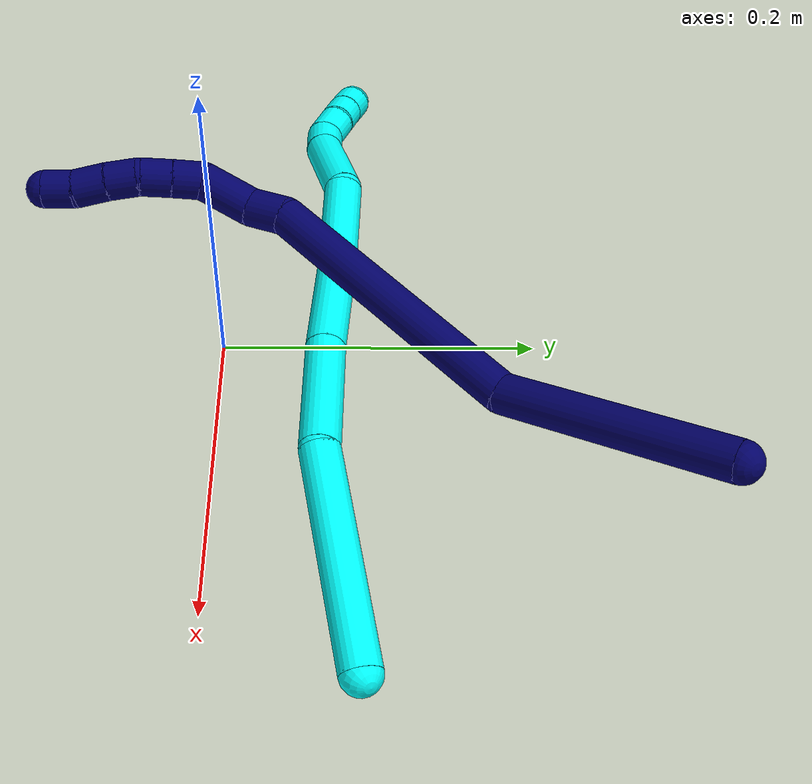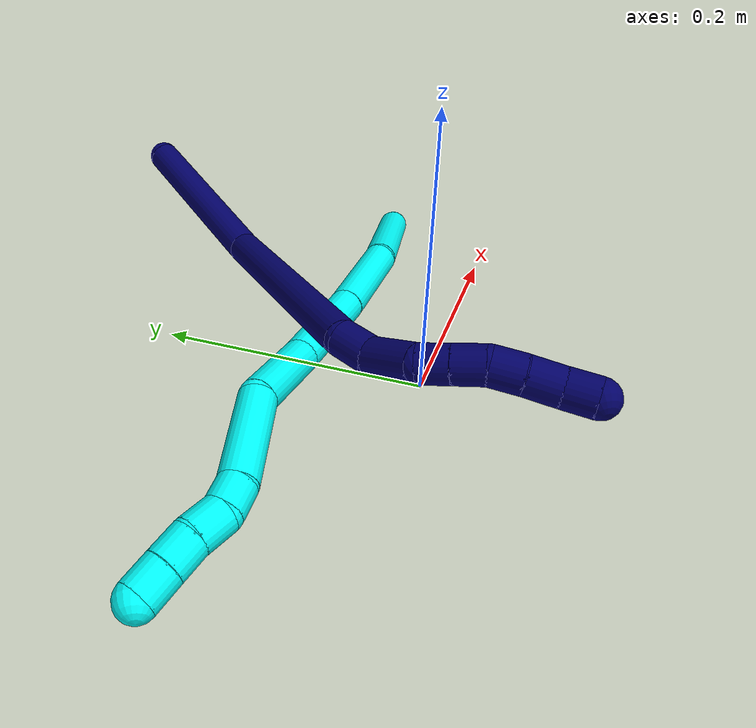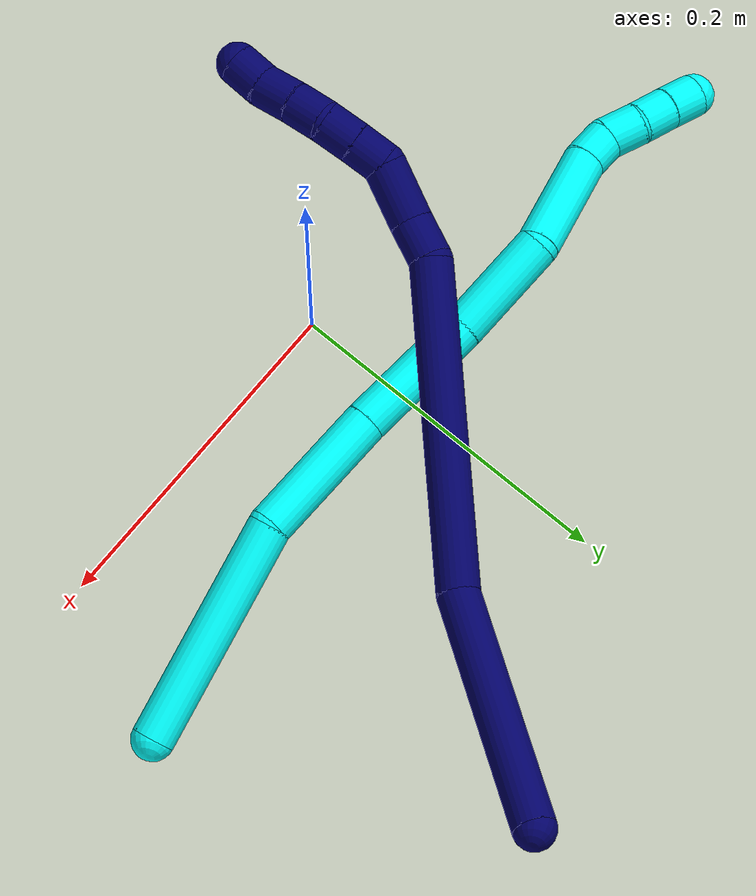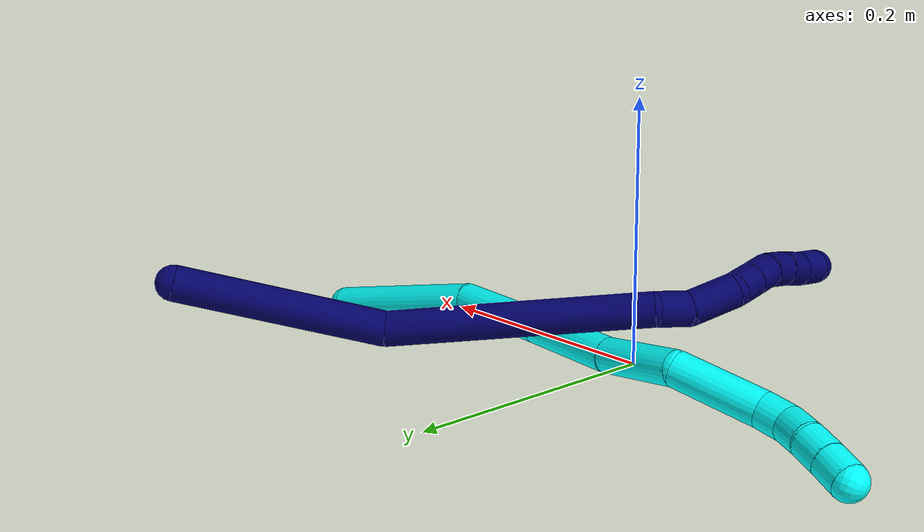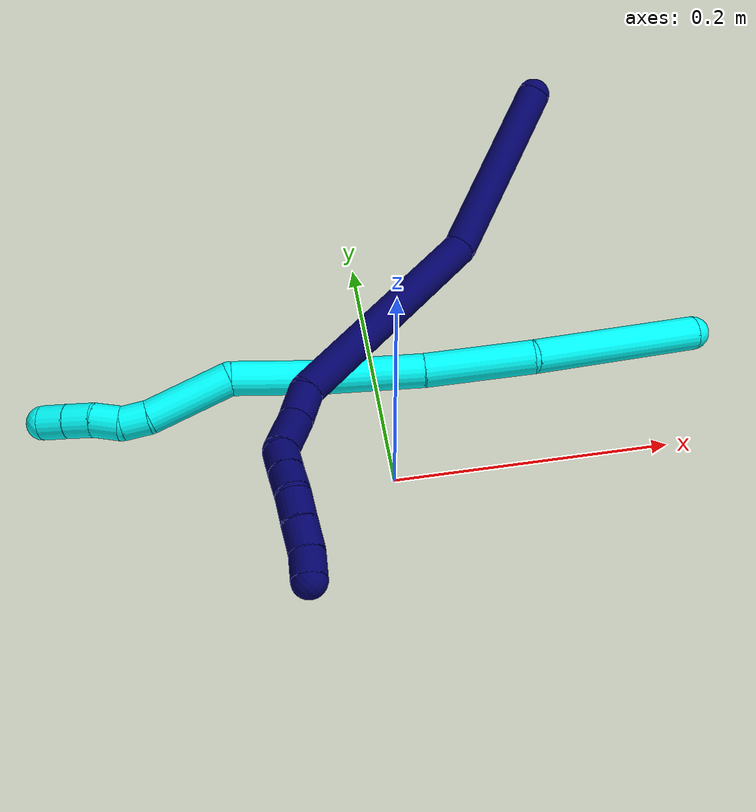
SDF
<sdf version="1.7">
 <world name="default">
  <model name="3">
   <static>0</static>
   <link name="3">
    <collision name="collision-cylinder-e_1_1_4">
     <pose>-0.025102 0.026182 0.056056 -0.436952 -0.38543 0.086594</pose>
     <geometry><cylinder><radius>0.0125</radius><length>0.133534</length></cylinder></geometry>
     <surface>
      <friction><ode><mu>1.16</mu><mu2>1.16</mu2><slip1>0</slip1><slip2>0</slip2></ode></friction>
      <contact><ode><kp>1e+06</kp><kd>1</kd><max_vel>0</max_vel><min_depth>0.001</min_depth></ode></contact>
     </surface>
    </collision>
    <visual name="visual-cylinder-e_1_1_4">
     <pose>-0.025102 0.026182 0.056056 -0.436952 -0.38543 0.086594</pose>
     <geometry><cylinder><radius>0.0125</radius><length>0.133534</length></cylinder></geometry>
     <material><ambient>0.003922 1 0.996078 1</ambient></material>
    </visual>
    <collision name="collision-cylinder-e_2_4_5">
     <pose>-0.070972 0.057264 0.146161 -0.142941 -0.543179 0.039867</pose>
     <geometry><cylinder><radius>0.0125</radius><length>0.080367</length></cylinder></geometry>
     <surface>
      <friction><ode><mu>1.16</mu><mu2>1.16</mu2><slip1>0</slip1><slip2>0</slip2></ode></friction>
      <contact><ode><kp>1e+06</kp><kd>1</kd><max_vel>0</max_vel><min_depth>0.001</min_depth></ode></contact>
     </surface>
    </collision>
    <visual name="visual-cylinder-e_2_4_5">
     <pose>-0.070972 0.057264 0.146161 -0.142941 -0.543179 0.039867</pose>
     <geometry><cylinder><radius>0.0125</radius><length>0.080367</length></cylinder></geometry>
     <material><ambient>0.003922 1 0.996078 1</ambient></material>
    </visual>
    <collision name="collision-cylinder-e_3_5_6">
     <pose>-0.113722 0.066844 0.211591 -0.148034 -0.605857 0.046344</pose>
     <geometry><cylinder><radius>0.0125</radius><length>0.077197</length></cylinder></geometry>
     <surface>
      <friction><ode><mu>1.16</mu><mu2>1.16</mu2><slip1>0</slip1><slip2>0</slip2></ode></friction>
      <contact><ode><kp>1e+06</kp><kd>1</kd><max_vel>0</max_vel><min_depth>0.001</min_depth></ode></contact>
     </surface>
    </collision>
    <visual name="visual-cylinder-e_3_5_6">
     <pose>-0.113722 0.066844 0.211591 -0.148034 -0.605857 0.046344</pose>
     <geometry><cylinder><radius>0.0125</radius><length>0.077197</length></cylinder></geometry>
     <material><ambient>0.003922 1 0.996078 1</ambient></material>
    </visual>
    <collision name="collision-cylinder-e_4_6_7">
     <pose>-0.153554 0.079551 0.267928 -0.311218 -0.597825 0.096607</pose>
     <geometry><cylinder><radius>0.0125</radius><length>0.063431</length></cylinder></geometry>
     <surface>
      <friction><ode><mu>1.16</mu><mu2>1.16</mu2><slip1>0</slip1><slip2>0</slip2></ode></friction>
      <contact><ode><kp>1e+06</kp><kd>1</kd><max_vel>0</max_vel><min_depth>0.001</min_depth></ode></contact>
     </surface>
    </collision>
    <visual name="visual-cylinder-e_4_6_7">
     <pose>-0.153554 0.079551 0.267928 -0.311218 -0.597825 0.096607</pose>
     <geometry><cylinder><radius>0.0125</radius><length>0.063431</length></cylinder></geometry>
     <material><ambient>0.003922 1 0.996078 1</ambient></material>
    </visual>
    <collision name="collision-cylinder-e_5_7_8">
     <pose>-0.179062 0.087745 0.323614 -0.005409 -0.244207 0.000664</pose>
     <geometry><cylinder><radius>0.0125</radius><length>0.06334</length></cylinder></geometry>
     <surface>
      <friction><ode><mu>1.16</mu><mu2>1.16</mu2><slip1>0</slip1><slip2>0</slip2></ode></friction>
      <contact><ode><kp>1e+06</kp><kd>1</kd><max_vel>0</max_vel><min_depth>0.001</min_depth></ode></contact>
     </surface>
    </collision>
    <visual name="visual-cylinder-e_5_7_8">
     <pose>-0.179062 0.087745 0.323614 -0.005409 -0.244207 0.000664</pose>
     <geometry><cylinder><radius>0.0125</radius><length>0.06334</length></cylinder></geometry>
     <material><ambient>0.003922 1 0.996078 1</ambient></material>
    </visual>
    <collision name="collision-cylinder-e_6_8_9">
     <pose>-0.191279 0.087695 0.363242 0.024271 -0.473381 -0.005855</pose>
     <geometry><cylinder><radius>0.0125</radius><length>0.020002</length></cylinder></geometry>
     <surface>
      <friction><ode><mu>1.16</mu><mu2>1.16</mu2><slip1>0</slip1><slip2>0</slip2></ode></friction>
      <contact><ode><kp>1e+06</kp><kd>1</kd><max_vel>0</max_vel><min_depth>0.001</min_depth></ode></contact>
     </surface>
    </collision>
    <visual name="visual-cylinder-e_6_8_9">
     <pose>-0.191279 0.087695 0.363242 0.024271 -0.473381 -0.005855</pose>
     <geometry><cylinder><radius>0.0125</radius><length>0.020002</length></cylinder></geometry>
     <material><ambient>0.003922 1 0.996078 1</ambient></material>
    </visual>
    <collision name="collision-cylinder-e_7_9_10">
     <pose>-0.204028 0.08678 0.379196 0.09876 -0.857241 -0.045158</pose>
     <geometry><cylinder><radius>0.0125</radius><length>0.021665</length></cylinder></geometry>
     <surface>
      <friction><ode><mu>1.16</mu><mu2>1.16</mu2><slip1>0</slip1><slip2>0</slip2></ode></friction>
      <contact><ode><kp>1e+06</kp><kd>1</kd><max_vel>0</max_vel><min_depth>0.001</min_depth></ode></contact>
     </surface>
    </collision>
    <visual name="visual-cylinder-e_7_9_10">
     <pose>-0.204028 0.08678 0.379196 0.09876 -0.857241 -0.045158</pose>
     <geometry><cylinder><radius>0.0125</radius><length>0.021665</length></cylinder></geometry>
     <material><ambient>0.003922 1 0.996078 1</ambient></material>
    </visual>
    <collision name="collision-cylinder-e_8_10_11">
     <pose>-0.218861 0.08429 0.393816 0.232399 -0.70715 -0.08611</pose>
     <geometry><cylinder><radius>0.0125</radius><length>0.020449</length></cylinder></geometry>
     <surface>
      <friction><ode><mu>1.16</mu><mu2>1.16</mu2><slip1>0</slip1><slip2>0</slip2></ode></friction>
      <contact><ode><kp>1e+06</kp><kd>1</kd><max_vel>0</max_vel><min_depth>0.001</min_depth></ode></contact>
     </surface>
    </collision>
    <visual name="visual-cylinder-e_8_10_11">
     <pose>-0.218861 0.08429 0.393816 0.232399 -0.70715 -0.08611</pose>
     <geometry><cylinder><radius>0.0125</radius><length>0.020449</length></cylinder></geometry>
     <material><ambient>0.003922 1 0.996078 1</ambient></material>
    </visual>
    <collision name="collision-cylinder-e_9_11_2">
     <pose>-0.231938 0.080363 0.40874 0.282581 -0.698435 -0.103497</pose>
     <geometry><cylinder><radius>0.0125</radius><length>0.020015</length></cylinder></geometry>
     <surface>
      <friction><ode><mu>1.16</mu><mu2>1.16</mu2><slip1>0</slip1><slip2>0</slip2></ode></friction>
      <contact><ode><kp>1e+06</kp><kd>1</kd><max_vel>0</max_vel><min_depth>0.001</min_depth></ode></contact>
     </surface>
    </collision>
    <visual name="visual-cylinder-e_9_11_2">
     <pose>-0.231938 0.080363 0.40874 0.282581 -0.698435 -0.103497</pose>
     <geometry><cylinder><radius>0.0125</radius><length>0.020015</length></cylinder></geometry>
     <material><ambient>0.003922 1 0.996078 1</ambient></material>
    </visual>
    <collision name="collision-sphere-2">
     <pose>-0.238373 0.078226 0.4161 0 -0 0</pose>
     <geometry><sphere><radius>0.0125</radius></sphere></geometry>
     <surface>
      <friction><ode><mu>1.16</mu><mu2>1.16</mu2><slip1>0</slip1><slip2>0</slip2></ode></friction>
      <contact><ode><kp>1e+06</kp><kd>1</kd><max_vel>0</max_vel><min_depth>0.001</min_depth></ode></contact>
     </surface>
    </collision>
    <visual name="visual-sphere-2">
     <pose>-0.238373 0.078226 0.4161 0 -0 0</pose>
     <geometry><sphere><radius>0.0125</radius></sphere></geometry>
     <material><ambient>0.003922 1 0.996078 1</ambient></material>
    </visual>
    <collision name="collision-sphere-11">
     <pose>-0.225503 0.0825 0.40138 0 -0 0</pose>
     <geometry><sphere><radius>0.0125</radius></sphere></geometry>
     <surface>
      <friction><ode><mu>1.16</mu><mu2>1.16</mu2><slip1>0</slip1><slip2>0</slip2></ode></friction>
      <contact><ode><kp>1e+06</kp><kd>1</kd><max_vel>0</max_vel><min_depth>0.001</min_depth></ode></contact>
     </surface>
    </collision>
    <visual name="visual-sphere-11">
     <pose>-0.225503 0.0825 0.40138 0 -0 0</pose>
     <geometry><sphere><radius>0.0125</radius></sphere></geometry>
     <material><ambient>0.003922 1 0.996078 1</ambient></material>
    </visual>
    <collision name="collision-sphere-10">
     <pose>-0.212218 0.086081 0.386252 0 -0 0</pose>
     <geometry><sphere><radius>0.0125</radius></sphere></geometry>
     <surface>
      <friction><ode><mu>1.16</mu><mu2>1.16</mu2><slip1>0</slip1><slip2>0</slip2></ode></friction>
      <contact><ode><kp>1e+06</kp><kd>1</kd><max_vel>0</max_vel><min_depth>0.001</min_depth></ode></contact>
     </surface>
    </collision>
    <visual name="visual-sphere-10">
     <pose>-0.212218 0.086081 0.386252 0 -0 0</pose>
     <geometry><sphere><radius>0.0125</radius></sphere></geometry>
     <material><ambient>0.003922 1 0.996078 1</ambient></material>
    </visual>
    <collision name="collision-sphere-9">
     <pose>-0.195838 0.087479 0.37214 0 -0 0</pose>
     <geometry><sphere><radius>0.0125</radius></sphere></geometry>
     <surface>
      <friction><ode><mu>1.16</mu><mu2>1.16</mu2><slip1>0</slip1><slip2>0</slip2></ode></friction>
      <contact><ode><kp>1e+06</kp><kd>1</kd><max_vel>0</max_vel><min_depth>0.001</min_depth></ode></contact>
     </surface>
    </collision>
    <visual name="visual-sphere-9">
     <pose>-0.195838 0.087479 0.37214 0 -0 0</pose>
     <geometry><sphere><radius>0.0125</radius></sphere></geometry>
     <material><ambient>0.003922 1 0.996078 1</ambient></material>
    </visual>
    <collision name="collision-sphere-4">
     <pose>-0.050203 0.052363 0.112112 0 -0 0</pose>
     <geometry><sphere><radius>0.0125</radius></sphere></geometry>
     <surface>
      <friction><ode><mu>1.16</mu><mu2>1.16</mu2><slip1>0</slip1><slip2>0</slip2></ode></friction>
      <contact><ode><kp>1e+06</kp><kd>1</kd><max_vel>0</max_vel><min_depth>0.001</min_depth></ode></contact>
     </surface>
    </collision>
    <visual name="visual-sphere-4">
     <pose>-0.050203 0.052363 0.112112 0 -0 0</pose>
     <geometry><sphere><radius>0.0125</radius></sphere></geometry>
     <material><ambient>0.003922 1 0.996078 1</ambient></material>
    </visual>
    <collision name="collision-sphere-1">
     <geometry><sphere><radius>0.0125</radius></sphere></geometry>
     <surface>
      <friction><ode><mu>1.16</mu><mu2>1.16</mu2><slip1>0</slip1><slip2>0</slip2></ode></friction>
      <contact><ode><kp>1e+06</kp><kd>1</kd><max_vel>0</max_vel><min_depth>0.001</min_depth></ode></contact>
     </surface>
    </collision>
    <visual name="visual-sphere-1">
     <geometry><sphere><radius>0.0125</radius></sphere></geometry>
     <material><ambient>0.003922 1 0.996078 1</ambient></material>
    </visual>
    <collision name="collision-sphere-8">
     <pose>-0.186719 0.087911 0.354343 0 -0 0</pose>
     <geometry><sphere><radius>0.0125</radius></sphere></geometry>
     <surface>
      <friction><ode><mu>1.16</mu><mu2>1.16</mu2><slip1>0</slip1><slip2>0</slip2></ode></friction>
      <contact><ode><kp>1e+06</kp><kd>1</kd><max_vel>0</max_vel><min_depth>0.001</min_depth></ode></contact>
     </surface>
    </collision>
    <visual name="visual-sphere-8">
     <pose>-0.186719 0.087911 0.354343 0 -0 0</pose>
     <geometry><sphere><radius>0.0125</radius></sphere></geometry>
     <material><ambient>0.003922 1 0.996078 1</ambient></material>
    </visual>
    <collision name="collision-sphere-5">
     <pose>-0.091742 0.062164 0.18021 0 -0 0</pose>
     <geometry><sphere><radius>0.0125</radius></sphere></geometry>
     <surface>
      <friction><ode><mu>1.16</mu><mu2>1.16</mu2><slip1>0</slip1><slip2>0</slip2></ode></friction>
      <contact><ode><kp>1e+06</kp><kd>1</kd><max_vel>0</max_vel><min_depth>0.001</min_depth></ode></contact>
     </surface>
    </collision>
    <visual name="visual-sphere-5">
     <pose>-0.091742 0.062164 0.18021 0 -0 0</pose>
     <geometry><sphere><radius>0.0125</radius></sphere></geometry>
     <material><ambient>0.003922 1 0.996078 1</ambient></material>
    </visual>
    <collision name="collision-sphere-6">
     <pose>-0.135703 0.071524 0.242973 0 -0 0</pose>
     <geometry><sphere><radius>0.0125</radius></sphere></geometry>
     <surface>
      <friction><ode><mu>1.16</mu><mu2>1.16</mu2><slip1>0</slip1><slip2>0</slip2></ode></friction>
      <contact><ode><kp>1e+06</kp><kd>1</kd><max_vel>0</max_vel><min_depth>0.001</min_depth></ode></contact>
     </surface>
    </collision>
    <visual name="visual-sphere-6">
     <pose>-0.135703 0.071524 0.242973 0 -0 0</pose>
     <geometry><sphere><radius>0.0125</radius></sphere></geometry>
     <material><ambient>0.003922 1 0.996078 1</ambient></material>
    </visual>
    <collision name="collision-sphere-7">
     <pose>-0.171405 0.087578 0.292884 0 -0 0</pose>
     <geometry><sphere><radius>0.0125</radius></sphere></geometry>
     <surface>
      <friction><ode><mu>1.16</mu><mu2>1.16</mu2><slip1>0</slip1><slip2>0</slip2></ode></friction>
      <contact><ode><kp>1e+06</kp><kd>1</kd><max_vel>0</max_vel><min_depth>0.001</min_depth></ode></contact>
     </surface>
    </collision>
    <visual name="visual-sphere-7">
     <pose>-0.171405 0.087578 0.292884 0 -0 0</pose>
     <geometry><sphere><radius>0.0125</radius></sphere></geometry>
     <material><ambient>0.003922 1 0.996078 1</ambient></material>
    </visual>
    <inertial>
     <pose>-0.112561 0.061657 0.209547 0 -0 0</pose>
     <mass>0.5</mass>
     <inertia>
      <ixx>0.000311</ixx>
      <ixy>0</ixy>
      <ixz>0</ixz>
      <iyy>0.000353</iyy>
      <iyz>0</iyz>
      <izz>8.4e-05</izz>
     </inertia>
    </inertial>
   </link>
   <pose>0.241825 0.089442 0.012499 1.87765 0.206966 -1.02885</pose>
  </model>
  <model name="7">
   <static>0</static>
   <link name="7">
    <collision name="collision-cylinder-e_1_1_4">
     <pose>-0.001795 -0.031704 -0.066302 2.69555 -0.024415 -0.107555</pose>
     <geometry><cylinder><radius>0.0125</radius><length>0.147028</length></cylinder></geometry>
     <surface>
      <friction><ode><mu>1.16</mu><mu2>1.16</mu2><slip1>0</slip1><slip2>0</slip2></ode></friction>
      <contact><ode><kp>1e+06</kp><kd>1</kd><max_vel>0</max_vel><min_depth>0.001</min_depth></ode></contact>
     </surface>
    </collision>
    <visual name="visual-cylinder-e_1_1_4">
     <pose>-0.001795 -0.031704 -0.066302 2.69555 -0.024415 -0.107555</pose>
     <geometry><cylinder><radius>0.0125</radius><length>0.147028</length></cylinder></geometry>
     <material><ambient>0.003922 0 0.403922 1</ambient></material>
    </visual>
    <collision name="collision-cylinder-e_2_4_5">
     <pose>-0.043048 -0.096953 -0.211048 2.7375 -0.433196 -1.64235</pose>
     <geometry><cylinder><radius>0.0125</radius><length>0.187998</length></cylinder></geometry>
     <surface>
      <friction><ode><mu>1.16</mu><mu2>1.16</mu2><slip1>0</slip1><slip2>0</slip2></ode></friction>
      <contact><ode><kp>1e+06</kp><kd>1</kd><max_vel>0</max_vel><min_depth>0.001</min_depth></ode></contact>
     </surface>
    </collision>
    <visual name="visual-cylinder-e_2_4_5">
     <pose>-0.043048 -0.096953 -0.211048 2.7375 -0.433196 -1.64235</pose>
     <geometry><cylinder><radius>0.0125</radius><length>0.187998</length></cylinder></geometry>
     <material><ambient>0.003922 0 0.403922 1</ambient></material>
    </visual>
    <collision name="collision-cylinder-e_3_5_6">
     <pose>-0.084052 -0.138351 -0.29936 2.46946 -0.122008 -0.346207</pose>
     <geometry><cylinder><radius>0.0125</radius><length>0.02541</length></cylinder></geometry>
     <surface>
      <friction><ode><mu>1.16</mu><mu2>1.16</mu2><slip1>0</slip1><slip2>0</slip2></ode></friction>
      <contact><ode><kp>1e+06</kp><kd>1</kd><max_vel>0</max_vel><min_depth>0.001</min_depth></ode></contact>
     </surface>
    </collision>
    <visual name="visual-cylinder-e_3_5_6">
     <pose>-0.084052 -0.138351 -0.29936 2.46946 -0.122008 -0.346207</pose>
     <geometry><cylinder><radius>0.0125</radius><length>0.02541</length></cylinder></geometry>
     <material><ambient>0.003922 0 0.403922 1</ambient></material>
    </visual>
    <collision name="collision-cylinder-e_4_6_7">
     <pose>-0.093334 -0.158686 -0.319677 2.26771 -0.443586 -0.899628</pose>
     <geometry><cylinder><radius>0.0125</radius><length>0.036048</length></cylinder></geometry>
     <surface>
      <friction><ode><mu>1.16</mu><mu2>1.16</mu2><slip1>0</slip1><slip2>0</slip2></ode></friction>
      <contact><ode><kp>1e+06</kp><kd>1</kd><max_vel>0</max_vel><min_depth>0.001</min_depth></ode></contact>
     </surface>
    </collision>
    <visual name="visual-cylinder-e_4_6_7">
     <pose>-0.093334 -0.158686 -0.319677 2.26771 -0.443586 -0.899628</pose>
     <geometry><cylinder><radius>0.0125</radius><length>0.036048</length></cylinder></geometry>
     <material><ambient>0.003922 0 0.403922 1</ambient></material>
    </visual>
    <collision name="collision-cylinder-e_5_7_8">
     <pose>-0.101971 -0.1807 -0.333456 1.90699 -0.089095 -0.125431</pose>
     <geometry><cylinder><radius>0.0125</radius><length>0.020271</length></cylinder></geometry>
     <surface>
      <friction><ode><mu>1.16</mu><mu2>1.16</mu2><slip1>0</slip1><slip2>0</slip2></ode></friction>
      <contact><ode><kp>1e+06</kp><kd>1</kd><max_vel>0</max_vel><min_depth>0.001</min_depth></ode></contact>
     </surface>
    </collision>
    <visual name="visual-cylinder-e_5_7_8">
     <pose>-0.101971 -0.1807 -0.333456 1.90699 -0.089095 -0.125431</pose>
     <geometry><cylinder><radius>0.0125</radius><length>0.020271</length></cylinder></geometry>
     <material><ambient>0.003922 0 0.403922 1</ambient></material>
    </visual>
    <collision name="collision-cylinder-e_6_8_9">
     <pose>-0.103574 -0.200062 -0.340035 1.88987 -0.067545 -0.093418</pose>
     <geometry><cylinder><radius>0.0125</radius><length>0.020757</length></cylinder></geometry>
     <surface>
      <friction><ode><mu>1.16</mu><mu2>1.16</mu2><slip1>0</slip1><slip2>0</slip2></ode></friction>
      <contact><ode><kp>1e+06</kp><kd>1</kd><max_vel>0</max_vel><min_depth>0.001</min_depth></ode></contact>
     </surface>
    </collision>
    <visual name="visual-cylinder-e_6_8_9">
     <pose>-0.103574 -0.200062 -0.340035 1.88987 -0.067545 -0.093418</pose>
     <geometry><cylinder><radius>0.0125</radius><length>0.020757</length></cylinder></geometry>
     <material><ambient>0.003922 0 0.403922 1</ambient></material>
    </visual>
    <collision name="collision-cylinder-e_7_9_10">
     <pose>-0.102604 -0.21886 -0.347944 2.05021 0.163812 0.268762</pose>
     <geometry><cylinder><radius>0.0125</radius><length>0.020483</length></cylinder></geometry>
     <surface>
      <friction><ode><mu>1.16</mu><mu2>1.16</mu2><slip1>0</slip1><slip2>0</slip2></ode></friction>
      <contact><ode><kp>1e+06</kp><kd>1</kd><max_vel>0</max_vel><min_depth>0.001</min_depth></ode></contact>
     </surface>
    </collision>
    <visual name="visual-cylinder-e_7_9_10">
     <pose>-0.102604 -0.21886 -0.347944 2.05021 0.163812 0.268762</pose>
     <geometry><cylinder><radius>0.0125</radius><length>0.020483</length></cylinder></geometry>
     <material><ambient>0.003922 0 0.403922 1</ambient></material>
    </visual>
    <collision name="collision-cylinder-e_8_10_11">
     <pose>-0.098328 -0.237188 -0.357642 2.06435 0.240308 0.39873</pose>
     <geometry><cylinder><radius>0.0125</radius><length>0.021893</length></cylinder></geometry>
     <surface>
      <friction><ode><mu>1.16</mu><mu2>1.16</mu2><slip1>0</slip1><slip2>0</slip2></ode></friction>
      <contact><ode><kp>1e+06</kp><kd>1</kd><max_vel>0</max_vel><min_depth>0.001</min_depth></ode></contact>
     </surface>
    </collision>
    <visual name="visual-cylinder-e_8_10_11">
     <pose>-0.098328 -0.237188 -0.357642 2.06435 0.240308 0.39873</pose>
     <geometry><cylinder><radius>0.0125</radius><length>0.021893</length></cylinder></geometry>
     <material><ambient>0.003922 0 0.403922 1</ambient></material>
    </visual>
    <collision name="collision-cylinder-e_9_11_2">
     <pose>-0.095269 -0.255025 -0.368075 2.13783 0.045198 0.082333</pose>
     <geometry><cylinder><radius>0.0125</radius><length>0.020112</length></cylinder></geometry>
     <surface>
      <friction><ode><mu>1.16</mu><mu2>1.16</mu2><slip1>0</slip1><slip2>0</slip2></ode></friction>
      <contact><ode><kp>1e+06</kp><kd>1</kd><max_vel>0</max_vel><min_depth>0.001</min_depth></ode></contact>
     </surface>
    </collision>
    <visual name="visual-cylinder-e_9_11_2">
     <pose>-0.095269 -0.255025 -0.368075 2.13783 0.045198 0.082333</pose>
     <geometry><cylinder><radius>0.0125</radius><length>0.020112</length></cylinder></geometry>
     <material><ambient>0.003922 0 0.403922 1</ambient></material>
    </visual>
    <collision name="collision-sphere-2">
     <pose>-0.094814 -0.263499 -0.373471 0 -0 0</pose>
     <geometry><sphere><radius>0.0125</radius></sphere></geometry>
     <surface>
      <friction><ode><mu>1.16</mu><mu2>1.16</mu2><slip1>0</slip1><slip2>0</slip2></ode></friction>
      <contact><ode><kp>1e+06</kp><kd>1</kd><max_vel>0</max_vel><min_depth>0.001</min_depth></ode></contact>
     </surface>
    </collision>
    <visual name="visual-sphere-2">
     <pose>-0.094814 -0.263499 -0.373471 0 -0 0</pose>
     <geometry><sphere><radius>0.0125</radius></sphere></geometry>
     <material><ambient>0.003922 0 0.403922 1</ambient></material>
    </visual>
    <collision name="collision-sphere-11">
     <pose>-0.095723 -0.246552 -0.362679 0 -0 0</pose>
     <geometry><sphere><radius>0.0125</radius></sphere></geometry>
     <surface>
      <friction><ode><mu>1.16</mu><mu2>1.16</mu2><slip1>0</slip1><slip2>0</slip2></ode></friction>
      <contact><ode><kp>1e+06</kp><kd>1</kd><max_vel>0</max_vel><min_depth>0.001</min_depth></ode></contact>
     </surface>
    </collision>
    <visual name="visual-sphere-11">
     <pose>-0.095723 -0.246552 -0.362679 0 -0 0</pose>
     <geometry><sphere><radius>0.0125</radius></sphere></geometry>
     <material><ambient>0.003922 0 0.403922 1</ambient></material>
    </visual>
    <collision name="collision-sphere-10">
     <pose>-0.100934 -0.227825 -0.352605 0 -0 0</pose>
     <geometry><sphere><radius>0.0125</radius></sphere></geometry>
     <surface>
      <friction><ode><mu>1.16</mu><mu2>1.16</mu2><slip1>0</slip1><slip2>0</slip2></ode></friction>
      <contact><ode><kp>1e+06</kp><kd>1</kd><max_vel>0</max_vel><min_depth>0.001</min_depth></ode></contact>
     </surface>
    </collision>
    <visual name="visual-sphere-10">
     <pose>-0.100934 -0.227825 -0.352605 0 -0 0</pose>
     <geometry><sphere><radius>0.0125</radius></sphere></geometry>
     <material><ambient>0.003922 0 0.403922 1</ambient></material>
    </visual>
    <collision name="collision-sphere-9">
     <pose>-0.104274 -0.209894 -0.343283 0 -0 0</pose>
     <geometry><sphere><radius>0.0125</radius></sphere></geometry>
     <surface>
      <friction><ode><mu>1.16</mu><mu2>1.16</mu2><slip1>0</slip1><slip2>0</slip2></ode></friction>
      <contact><ode><kp>1e+06</kp><kd>1</kd><max_vel>0</max_vel><min_depth>0.001</min_depth></ode></contact>
     </surface>
    </collision>
    <visual name="visual-sphere-9">
     <pose>-0.104274 -0.209894 -0.343283 0 -0 0</pose>
     <geometry><sphere><radius>0.0125</radius></sphere></geometry>
     <material><ambient>0.003922 0 0.403922 1</ambient></material>
    </visual>
    <collision name="collision-sphere-4">
     <pose>-0.003589 -0.063408 -0.132603 0 -0 0</pose>
     <geometry><sphere><radius>0.0125</radius></sphere></geometry>
     <surface>
      <friction><ode><mu>1.16</mu><mu2>1.16</mu2><slip1>0</slip1><slip2>0</slip2></ode></friction>
      <contact><ode><kp>1e+06</kp><kd>1</kd><max_vel>0</max_vel><min_depth>0.001</min_depth></ode></contact>
     </surface>
    </collision>
    <visual name="visual-sphere-4">
     <pose>-0.003589 -0.063408 -0.132603 0 -0 0</pose>
     <geometry><sphere><radius>0.0125</radius></sphere></geometry>
     <material><ambient>0.003922 0 0.403922 1</ambient></material>
    </visual>
    <collision name="collision-sphere-1">
     <geometry><sphere><radius>0.0125</radius></sphere></geometry>
     <surface>
      <friction><ode><mu>1.16</mu><mu2>1.16</mu2><slip1>0</slip1><slip2>0</slip2></ode></friction>
      <contact><ode><kp>1e+06</kp><kd>1</kd><max_vel>0</max_vel><min_depth>0.001</min_depth></ode></contact>
     </surface>
    </collision>
    <visual name="visual-sphere-1">
     <geometry><sphere><radius>0.0125</radius></sphere></geometry>
     <material><ambient>0.003922 0 0.403922 1</ambient></material>
    </visual>
    <collision name="collision-sphere-8">
     <pose>-0.102873 -0.19023 -0.336787 0 -0 0</pose>
     <geometry><sphere><radius>0.0125</radius></sphere></geometry>
     <surface>
      <friction><ode><mu>1.16</mu><mu2>1.16</mu2><slip1>0</slip1><slip2>0</slip2></ode></friction>
      <contact><ode><kp>1e+06</kp><kd>1</kd><max_vel>0</max_vel><min_depth>0.001</min_depth></ode></contact>
     </surface>
    </collision>
    <visual name="visual-sphere-8">
     <pose>-0.102873 -0.19023 -0.336787 0 -0 0</pose>
     <geometry><sphere><radius>0.0125</radius></sphere></geometry>
     <material><ambient>0.003922 0 0.403922 1</ambient></material>
    </visual>
    <collision name="collision-sphere-5">
     <pose>-0.082506 -0.130499 -0.289492 0 -0 0</pose>
     <geometry><sphere><radius>0.0125</radius></sphere></geometry>
     <surface>
      <friction><ode><mu>1.16</mu><mu2>1.16</mu2><slip1>0</slip1><slip2>0</slip2></ode></friction>
      <contact><ode><kp>1e+06</kp><kd>1</kd><max_vel>0</max_vel><min_depth>0.001</min_depth></ode></contact>
     </surface>
    </collision>
    <visual name="visual-sphere-5">
     <pose>-0.082506 -0.130499 -0.289492 0 -0 0</pose>
     <geometry><sphere><radius>0.0125</radius></sphere></geometry>
     <material><ambient>0.003922 0 0.403922 1</ambient></material>
    </visual>
    <collision name="collision-sphere-6">
     <pose>-0.085598 -0.146203 -0.309228 0 -0 0</pose>
     <geometry><sphere><radius>0.0125</radius></sphere></geometry>
     <surface>
      <friction><ode><mu>1.16</mu><mu2>1.16</mu2><slip1>0</slip1><slip2>0</slip2></ode></friction>
      <contact><ode><kp>1e+06</kp><kd>1</kd><max_vel>0</max_vel><min_depth>0.001</min_depth></ode></contact>
     </surface>
    </collision>
    <visual name="visual-sphere-6">
     <pose>-0.085598 -0.146203 -0.309228 0 -0 0</pose>
     <geometry><sphere><radius>0.0125</radius></sphere></geometry>
     <material><ambient>0.003922 0 0.403922 1</ambient></material>
    </visual>
    <collision name="collision-sphere-7">
     <pose>-0.101069 -0.17117 -0.330126 0 -0 0</pose>
     <geometry><sphere><radius>0.0125</radius></sphere></geometry>
     <surface>
      <friction><ode><mu>1.16</mu><mu2>1.16</mu2><slip1>0</slip1><slip2>0</slip2></ode></friction>
      <contact><ode><kp>1e+06</kp><kd>1</kd><max_vel>0</max_vel><min_depth>0.001</min_depth></ode></contact>
     </surface>
    </collision>
    <visual name="visual-sphere-7">
     <pose>-0.101069 -0.17117 -0.330126 0 -0 0</pose>
     <geometry><sphere><radius>0.0125</radius></sphere></geometry>
     <material><ambient>0.003922 0 0.403922 1</ambient></material>
    </visual>
    <inertial>
     <pose>-0.048489 -0.10949 -0.209465 0 -0 0</pose>
     <mass>0.5</mass>
     <inertia>
      <ixx>-0.000303</ixx>
      <ixy>0</ixy>
      <ixz>0</ixz>
      <iyy>-0.00068</iyy>
      <iyz>0</iyz>
      <izz>0.000544</izz>
     </inertia>
    </inertial>
   </link>
   <pose>0.157708 0.2885 0.084535 -0.50064 1.06484 -0.025939</pose>
  </model>
 </world>
</sdf>
